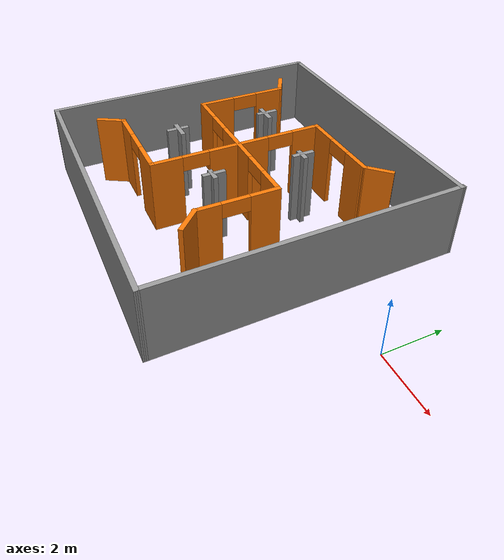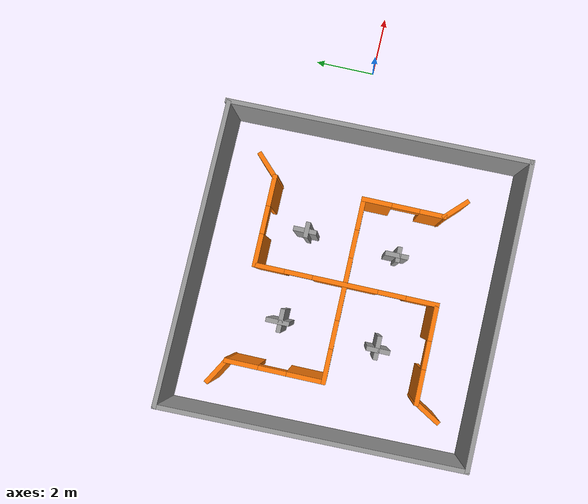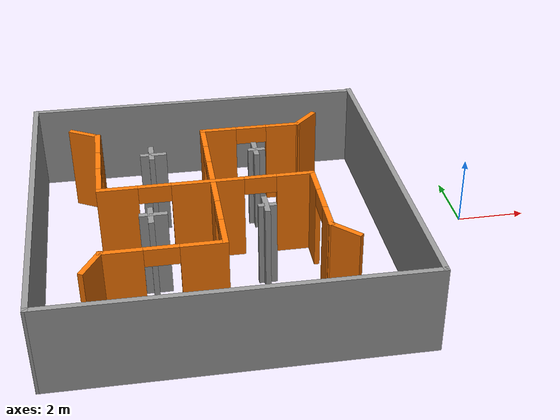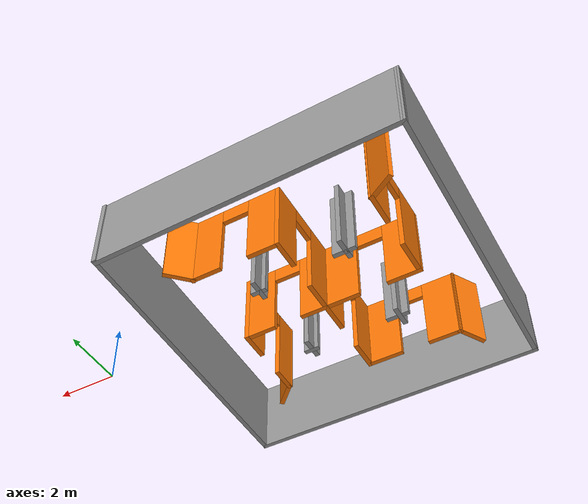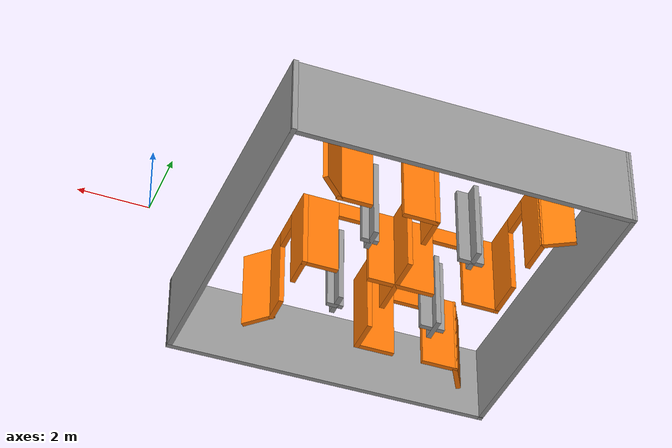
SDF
<?xml version='1.0'?>
<sdf version='1.6'>
  <model name='building'>
    <pose frame=''>-7.39701 -0.649849 0 0 -0 0</pose>
    <link name='Wall_21'>
      <collision name='Wall_21_Collision'>
        <geometry>
          <box>
            <size>10 0.15 2.5</size>
          </box>
        </geometry>
        <pose frame=''>0 0 1.25 0 -0 0</pose>
      </collision>
      <visual name='Wall_21_Visual'>
        <pose frame=''>0 0 1.25 0 -0 0</pose>
        <geometry>
          <box>
            <size>10 0.15 2.5</size>
          </box>
        </geometry>
        <material>
          <script>
            <uri>file://media/materials/scripts/gazebo.material</uri>
            <name>Gazebo/Grey</name>
          </script>
          <ambient>1 1 1 1</ambient>
        </material>
        <meta>
          <layer>0</layer>
        </meta>
      </visual>
      <pose frame=''>-4.92709 0.035342 0 0 -0 1.58535</pose>
    </link>
    <link name='Wall_22'>
      <collision name='Wall_22_Collision'>
        <geometry>
          <box>
            <size>10.0029 0.15 2.5</size>
          </box>
        </geometry>
        <pose frame=''>0 0 1.25 0 -0 0</pose>
      </collision>
      <visual name='Wall_22_Visual'>
        <pose frame=''>0 0 1.25 0 -0 0</pose>
        <geometry>
          <box>
            <size>10.0029 0.15 2.5</size>
          </box>
        </geometry>
        <material>
          <script>
            <uri>file://media/materials/scripts/gazebo.material</uri>
            <name>Gazebo/Grey</name>
          </script>
          <ambient>1 1 1 1</ambient>
        </material>
        <meta>
          <layer>0</layer>
        </meta>
      </visual>
      <pose frame=''>-0.072667 4.92419 0 0 0 -0.007232</pose>
    </link>
    <link name='Wall_23'>
      <collision name='Wall_23_Collision'>
        <geometry>
          <box>
            <size>10 0.15 2.5</size>
          </box>
        </geometry>
        <pose frame=''>0 0 1.25 0 -0 0</pose>
      </collision>
      <visual name='Wall_23_Visual'>
        <pose frame=''>0 0 1.25 0 -0 0</pose>
        <geometry>
          <box>
            <size>10 0.15 2.5</size>
          </box>
        </geometry>
        <material>
          <script>
            <uri>file://media/materials/scripts/gazebo.material</uri>
            <name>Gazebo/Grey</name>
          </script>
          <ambient>1 1 1 1</ambient>
        </material>
        <meta>
          <layer>0</layer>
        </meta>
      </visual>
      <pose frame=''>4.92607 0.01089 0 0 0 -1.55604</pose>
    </link>
    <link name='Wall_24'>
      <collision name='Wall_24_Collision'>
        <geometry>
          <box>
            <size>10.0049 0.15 2.5</size>
          </box>
        </geometry>
        <pose frame=''>0 0 1.25 0 -0 0</pose>
      </collision>
      <visual name='Wall_24_Visual'>
        <pose frame=''>0 0 1.25 0 -0 0</pose>
        <geometry>
          <box>
            <size>10.0049 0.15 2.5</size>
          </box>
        </geometry>
        <material>
          <script>
            <uri>file://media/materials/scripts/gazebo.material</uri>
            <name>Gazebo/Grey</name>
          </script>
          <ambient>1 1 1 1</ambient>
        </material>
        <meta>
          <layer>0</layer>
        </meta>
      </visual>
      <pose frame=''>0.071649 -4.92475 0 0 -0 3.13436</pose>
    </link>
    <link name='Wall_26'>
      <pose frame=''>-0.227982 0.009757 0 0 -0 0</pose>
      <visual name='Wall_26_Visual_0'>
        <pose frame=''>-2.43889 0 1.25 0 -0 0</pose>
        <geometry>
          <box>
            <size>1.12222 0.15 2.5</size>
          </box>
        </geometry>
        <material>
          <script>
            <uri>file://media/materials/scripts/gazebo.material</uri>
            <name>Gazebo/Grey</name>
          </script>
          <ambient>0.996078 0.47451 0.0196078 1</ambient>
        </material>
        <meta>
          <layer>0</layer>
        </meta>
      </visual>
      <collision name='Wall_26_Collision_0'>
        <geometry>
          <box>
            <size>1.12222 0.15 2.5</size>
          </box>
        </geometry>
        <pose frame=''>-2.43889 0 1.25 0 -0 0</pose>
      </collision>
      <visual name='Wall_26_Visual_1'>
        <pose frame=''>0.022651 0 1.25 0 -0 0</pose>
        <geometry>
          <box>
            <size>2.00086 0.15 2.5</size>
          </box>
        </geometry>
        <material>
          <script>
            <uri>file://media/materials/scripts/gazebo.material</uri>
            <name>Gazebo/Grey</name>
          </script>
          <ambient>0.996078 0.47451 0.0196078 1</ambient>
        </material>
        <meta>
          <layer>0</layer>
        </meta>
      </visual>
      <collision name='Wall_26_Collision_1'>
        <geometry>
          <box>
            <size>2.00086 0.15 2.5</size>
          </box>
        </geometry>
        <pose frame=''>0.022651 0 1.25 0 -0 0</pose>
      </collision>
      <visual name='Wall_26_Visual_2'>
        <pose frame=''>2.46154 0 1.25 0 -0 0</pose>
        <geometry>
          <box>
            <size>1.07692 0.15 2.5</size>
          </box>
        </geometry>
        <material>
          <script>
            <uri>file://media/materials/scripts/gazebo.material</uri>
            <name>Gazebo/Grey</name>
          </script>
          <ambient>0.996078 0.47451 0.0196078 1</ambient>
        </material>
        <meta>
          <layer>0</layer>
        </meta>
      </visual>
      <collision name='Wall_26_Collision_2'>
        <geometry>
          <box>
            <size>1.07692 0.15 2.5</size>
          </box>
        </geometry>
        <pose frame=''>2.46154 0 1.25 0 -0 0</pose>
      </collision>
      <visual name='Wall_26_Visual_3'>
        <pose frame=''>-1.42778 0 2.25 0 -0 0</pose>
        <geometry>
          <box>
            <size>0.9 0.15 0.5</size>
          </box>
        </geometry>
        <material>
          <script>
            <uri>file://media/materials/scripts/gazebo.material</uri>
            <name>Gazebo/Grey</name>
          </script>
          <ambient>0.996078 0.47451 0.0196078 1</ambient>
        </material>
        <meta>
          <layer>0</layer>
        </meta>
      </visual>
      <collision name='Wall_26_Collision_3'>
        <geometry>
          <box>
            <size>0.9 0.15 0.5</size>
          </box>
        </geometry>
        <pose frame=''>-1.42778 0 2.25 0 -0 0</pose>
      </collision>
      <visual name='Wall_26_Visual_4'>
        <pose frame=''>1.47308 0 2.25 0 -0 0</pose>
        <geometry>
          <box>
            <size>0.9 0.15 0.5</size>
          </box>
        </geometry>
        <material>
          <script>
            <uri>file://media/materials/scripts/gazebo.material</uri>
            <name>Gazebo/Grey</name>
          </script>
          <ambient>0.996078 0.47451 0.0196078 1</ambient>
        </material>
        <meta>
          <layer>0</layer>
        </meta>
      </visual>
      <collision name='Wall_26_Collision_4'>
        <geometry>
          <box>
            <size>0.9 0.15 0.5</size>
          </box>
        </geometry>
        <pose frame=''>1.47308 0 2.25 0 -0 0</pose>
      </collision>
    </link>
    <link name='Wall_28'>
      <pose frame=''>-0.064968 -0.012893 0 0 -0 1.5708</pose>
      <visual name='Wall_28_Visual_0'>
        <pose frame=''>-2.46228 0 1.25 0 -0 0</pose>
        <geometry>
          <box>
            <size>1.07543 0.15 2.5</size>
          </box>
        </geometry>
        <material>
          <script>
            <uri>file://media/materials/scripts/gazebo.material</uri>
            <name>Gazebo/Grey</name>
          </script>
          <ambient>0.996078 0.47451 0.0196078 1</ambient>
        </material>
        <meta>
          <layer>0</layer>
        </meta>
      </visual>
      <collision name='Wall_28_Collision_0'>
        <geometry>
          <box>
            <size>1.07543 0.15 2.5</size>
          </box>
        </geometry>
        <pose frame=''>-2.46228 0 1.25 0 -0 0</pose>
      </collision>
      <visual name='Wall_28_Visual_1'>
        <pose frame=''>0.022651 0 1.25 0 -0 0</pose>
        <geometry>
          <box>
            <size>2.09444 0.15 2.5</size>
          </box>
        </geometry>
        <material>
          <script>
            <uri>file://media/materials/scripts/gazebo.material</uri>
            <name>Gazebo/Grey</name>
          </script>
          <ambient>0.996078 0.47451 0.0196078 1</ambient>
        </material>
        <meta>
          <layer>0</layer>
        </meta>
      </visual>
      <collision name='Wall_28_Collision_1'>
        <geometry>
          <box>
            <size>2.09444 0.15 2.5</size>
          </box>
        </geometry>
        <pose frame=''>0.022651 0 1.25 0 -0 0</pose>
      </collision>
      <visual name='Wall_28_Visual_2'>
        <pose frame=''>2.48494 0 1.25 0 -0 0</pose>
        <geometry>
          <box>
            <size>1.03013 0.15 2.5</size>
          </box>
        </geometry>
        <material>
          <script>
            <uri>file://media/materials/scripts/gazebo.material</uri>
            <name>Gazebo/Grey</name>
          </script>
          <ambient>0.996078 0.47451 0.0196078 1</ambient>
        </material>
        <meta>
          <layer>0</layer>
        </meta>
      </visual>
      <collision name='Wall_28_Collision_2'>
        <geometry>
          <box>
            <size>1.03013 0.15 2.5</size>
          </box>
        </geometry>
        <pose frame=''>2.48494 0 1.25 0 -0 0</pose>
      </collision>
      <visual name='Wall_28_Visual_3'>
        <pose frame=''>-1.47457 0 2.25 0 -0 0</pose>
        <geometry>
          <box>
            <size>0.9 0.15 0.5</size>
          </box>
        </geometry>
        <material>
          <script>
            <uri>file://media/materials/scripts/gazebo.material</uri>
            <name>Gazebo/Grey</name>
          </script>
          <ambient>0.996078 0.47451 0.0196078 1</ambient>
        </material>
        <meta>
          <layer>0</layer>
        </meta>
      </visual>
      <collision name='Wall_28_Collision_3'>
        <geometry>
          <box>
            <size>0.9 0.15 0.5</size>
          </box>
        </geometry>
        <pose frame=''>-1.47457 0 2.25 0 -0 0</pose>
      </collision>
      <visual name='Wall_28_Visual_4'>
        <pose frame=''>1.51987 0 2.25 0 -0 0</pose>
        <geometry>
          <box>
            <size>0.9 0.15 0.5</size>
          </box>
        </geometry>
        <material>
          <script>
            <uri>file://media/materials/scripts/gazebo.material</uri>
            <name>Gazebo/Grey</name>
          </script>
          <ambient>0.996078 0.47451 0.0196078 1</ambient>
        </material>
        <meta>
          <layer>0</layer>
        </meta>
      </visual>
      <collision name='Wall_28_Collision_4'>
        <geometry>
          <box>
            <size>0.9 0.15 0.5</size>
          </box>
        </geometry>
        <pose frame=''>1.51987 0 2.25 0 -0 0</pose>
      </collision>
    </link>
    <link name='Wall_29'>
      <pose frame=''>1.36003 2.91211 0 0 -0 0</pose>
      <visual name='Wall_29_Visual_0'>
        <pose frame=''>-0.962284 0 1.25 0 -0 0</pose>
        <geometry>
          <box>
            <size>1.07543 0.15 2.5</size>
          </box>
        </geometry>
        <material>
          <script>
            <uri>file://media/materials/scripts/gazebo.material</uri>
            <name>Gazebo/Grey</name>
          </script>
          <ambient>0.996078 0.47451 0.0196078 1</ambient>
        </material>
        <meta>
          <layer>0</layer>
        </meta>
      </visual>
      <collision name='Wall_29_Collision_0'>
        <geometry>
          <box>
            <size>1.07543 0.15 2.5</size>
          </box>
        </geometry>
        <pose frame=''>-0.962284 0 1.25 0 -0 0</pose>
      </collision>
      <visual name='Wall_29_Visual_1'>
        <pose frame=''>0.987716 0 1.25 0 -0 0</pose>
        <geometry>
          <box>
            <size>1.02457 0.15 2.5</size>
          </box>
        </geometry>
        <material>
          <script>
            <uri>file://media/materials/scripts/gazebo.material</uri>
            <name>Gazebo/Grey</name>
          </script>
          <ambient>0.996078 0.47451 0.0196078 1</ambient>
        </material>
        <meta>
          <layer>0</layer>
        </meta>
      </visual>
      <collision name='Wall_29_Collision_1'>
        <geometry>
          <box>
            <size>1.02457 0.15 2.5</size>
          </box>
        </geometry>
        <pose frame=''>0.987716 0 1.25 0 -0 0</pose>
      </collision>
      <visual name='Wall_29_Visual_2'>
        <pose frame=''>0.025431 0 2.25 0 -0 0</pose>
        <geometry>
          <box>
            <size>0.9 0.15 0.5</size>
          </box>
        </geometry>
        <material>
          <script>
            <uri>file://media/materials/scripts/gazebo.material</uri>
            <name>Gazebo/Grey</name>
          </script>
          <ambient>0.996078 0.47451 0.0196078 1</ambient>
        </material>
        <meta>
          <layer>0</layer>
        </meta>
      </visual>
      <collision name='Wall_29_Collision_2'>
        <geometry>
          <box>
            <size>0.9 0.15 0.5</size>
          </box>
        </geometry>
        <pose frame=''>0.025431 0 2.25 0 -0 0</pose>
      </collision>
    </link>
    <link name='Wall_30'>
      <collision name='Wall_30_Collision'>
        <geometry>
          <box>
            <size>1 0.15 2.5</size>
          </box>
        </geometry>
        <pose frame=''>0 0 1.25 0 -0 0</pose>
      </collision>
      <visual name='Wall_30_Visual'>
        <pose frame=''>0 0 1.25 0 -0 0</pose>
        <geometry>
          <box>
            <size>1 0.15 2.5</size>
          </box>
        </geometry>
        <material>
          <script>
            <uri>file://media/materials/scripts/gazebo.material</uri>
            <name>Gazebo/Grey</name>
          </script>
          <ambient>0.996078 0.47451 0.0196078 1</ambient>
        </material>
        <meta>
          <layer>0</layer>
        </meta>
      </visual>
      <pose frame=''>3.08555 3.21263 0 0 -0 0.785398</pose>
    </link>
    <link name='Wall_32'>
      <pose frame=''>2.69702 -1.29024 0 0 0 -1.5708</pose>
      <visual name='Wall_32_Visual_0'>
        <pose frame=''>-0.884072 0 1.25 0 -0 0</pose>
        <geometry>
          <box>
            <size>0.981855 0.15 2.5</size>
          </box>
        </geometry>
        <material>
          <script>
            <uri>file://media/materials/scripts/gazebo.material</uri>
            <name>Gazebo/Grey</name>
          </script>
          <ambient>0.996078 0.47451 0.0196078 1</ambient>
        </material>
        <meta>
          <layer>0</layer>
        </meta>
      </visual>
      <collision name='Wall_32_Collision_0'>
        <geometry>
          <box>
            <size>0.981855 0.15 2.5</size>
          </box>
        </geometry>
        <pose frame=''>-0.884072 0 1.25 0 -0 0</pose>
      </collision>
      <visual name='Wall_32_Visual_1'>
        <pose frame=''>0.940928 0 1.25 0 -0 0</pose>
        <geometry>
          <box>
            <size>0.868145 0.15 2.5</size>
          </box>
        </geometry>
        <material>
          <script>
            <uri>file://media/materials/scripts/gazebo.material</uri>
            <name>Gazebo/Grey</name>
          </script>
          <ambient>0.996078 0.47451 0.0196078 1</ambient>
        </material>
        <meta>
          <layer>0</layer>
        </meta>
      </visual>
      <collision name='Wall_32_Collision_1'>
        <geometry>
          <box>
            <size>0.868145 0.15 2.5</size>
          </box>
        </geometry>
        <pose frame=''>0.940928 0 1.25 0 -0 0</pose>
      </collision>
      <visual name='Wall_32_Visual_2'>
        <pose frame=''>0.056855 0 2.25 0 -0 0</pose>
        <geometry>
          <box>
            <size>0.9 0.15 0.5</size>
          </box>
        </geometry>
        <material>
          <script>
            <uri>file://media/materials/scripts/gazebo.material</uri>
            <name>Gazebo/Grey</name>
          </script>
          <ambient>0.996078 0.47451 0.0196078 1</ambient>
        </material>
        <meta>
          <layer>0</layer>
        </meta>
      </visual>
      <collision name='Wall_32_Collision_2'>
        <geometry>
          <box>
            <size>0.9 0.15 0.5</size>
          </box>
        </geometry>
        <pose frame=''>0.056855 0 2.25 0 -0 0</pose>
      </collision>
    </link>
    <link name='Wall_33'>
      <collision name='Wall_33_Collision'>
        <geometry>
          <box>
            <size>1 0.15 2.5</size>
          </box>
        </geometry>
        <pose frame=''>0 0 1.25 0 -0 0</pose>
      </collision>
      <visual name='Wall_33_Visual'>
        <pose frame=''>0 0 1.25 0 -0 0</pose>
        <geometry>
          <box>
            <size>1 0.15 2.5</size>
          </box>
        </geometry>
        <material>
          <script>
            <uri>file://media/materials/scripts/gazebo.material</uri>
            <name>Gazebo/Grey</name>
          </script>
          <ambient>0.996078 0.47451 0.0196078 1</ambient>
        </material>
        <meta>
          <layer>0</layer>
        </meta>
      </visual>
      <pose frame=''>2.99754 -2.89076 0 0 0 -0.785398</pose>
    </link>
    <link name='Wall_35'>
      <pose frame=''>-1.61497 -2.93789 0 0 -0 3.14159</pose>
      <visual name='Wall_35_Visual_0'>
        <pose frame=''>-1.0171 0 1.25 0 -0 0</pose>
        <geometry>
          <box>
            <size>1.21579 0.15 2.5</size>
          </box>
        </geometry>
        <material>
          <script>
            <uri>file://media/materials/scripts/gazebo.material</uri>
            <name>Gazebo/Grey</name>
          </script>
          <ambient>0.996078 0.47451 0.0196078 1</ambient>
        </material>
        <meta>
          <layer>0</layer>
        </meta>
      </visual>
      <collision name='Wall_35_Collision_0'>
        <geometry>
          <box>
            <size>1.21579 0.15 2.5</size>
          </box>
        </geometry>
        <pose frame=''>-1.0171 0 1.25 0 -0 0</pose>
      </collision>
      <visual name='Wall_35_Visual_1'>
        <pose frame=''>1.0579 0 1.25 0 -0 0</pose>
        <geometry>
          <box>
            <size>1.1342 0.15 2.5</size>
          </box>
        </geometry>
        <material>
          <script>
            <uri>file://media/materials/scripts/gazebo.material</uri>
            <name>Gazebo/Grey</name>
          </script>
          <ambient>0.996078 0.47451 0.0196078 1</ambient>
        </material>
        <meta>
          <layer>0</layer>
        </meta>
      </visual>
      <collision name='Wall_35_Collision_1'>
        <geometry>
          <box>
            <size>1.1342 0.15 2.5</size>
          </box>
        </geometry>
        <pose frame=''>1.0579 0 1.25 0 -0 0</pose>
      </collision>
      <visual name='Wall_35_Visual_2'>
        <pose frame=''>0.040795 0 2.25 0 -0 0</pose>
        <geometry>
          <box>
            <size>0.9 0.15 0.5</size>
          </box>
        </geometry>
        <material>
          <script>
            <uri>file://media/materials/scripts/gazebo.material</uri>
            <name>Gazebo/Grey</name>
          </script>
          <ambient>0.996078 0.47451 0.0196078 1</ambient>
        </material>
        <meta>
          <layer>0</layer>
        </meta>
      </visual>
      <collision name='Wall_35_Collision_2'>
        <geometry>
          <box>
            <size>0.9 0.15 0.5</size>
          </box>
        </geometry>
        <pose frame=''>0.040795 0 2.25 0 -0 0</pose>
      </collision>
    </link>
    <link name='Wall_36'>
      <collision name='Wall_36_Collision'>
        <geometry>
          <box>
            <size>1 0.15 2.5</size>
          </box>
        </geometry>
        <pose frame=''>0 0 1.25 0 -0 0</pose>
      </collision>
      <visual name='Wall_36_Visual'>
        <pose frame=''>0 0 1.25 0 -0 0</pose>
        <geometry>
          <box>
            <size>1 0.15 2.5</size>
          </box>
        </geometry>
        <material>
          <script>
            <uri>file://media/materials/scripts/gazebo.material</uri>
            <name>Gazebo/Grey</name>
          </script>
          <ambient>0.996078 0.47451 0.0196078 1</ambient>
        </material>
        <meta>
          <layer>0</layer>
        </meta>
      </visual>
      <pose frame=''>-3.37747 -3.30595 0 0 0 -2.0944</pose>
    </link>
    <link name='Wall_38'>
      <pose frame=''>-3.15298 1.55976 0 0 -0 1.5708</pose>
      <visual name='Wall_38_Visual_0'>
        <pose frame=''>-0.993708 0 1.25 0 -0 0</pose>
        <geometry>
          <box>
            <size>1.26258 0.15 2.5</size>
          </box>
        </geometry>
        <material>
          <script>
            <uri>file://media/materials/scripts/gazebo.material</uri>
            <name>Gazebo/Grey</name>
          </script>
          <ambient>0.996078 0.47451 0.0196078 1</ambient>
        </material>
        <meta>
          <layer>0</layer>
        </meta>
      </visual>
      <collision name='Wall_38_Collision_0'>
        <geometry>
          <box>
            <size>1.26258 0.15 2.5</size>
          </box>
        </geometry>
        <pose frame=''>-0.993708 0 1.25 0 -0 0</pose>
      </collision>
      <visual name='Wall_38_Visual_1'>
        <pose frame=''>1.08129 0 1.25 0 -0 0</pose>
        <geometry>
          <box>
            <size>1.08742 0.15 2.5</size>
          </box>
        </geometry>
        <material>
          <script>
            <uri>file://media/materials/scripts/gazebo.material</uri>
            <name>Gazebo/Grey</name>
          </script>
          <ambient>0.996078 0.47451 0.0196078 1</ambient>
        </material>
        <meta>
          <layer>0</layer>
        </meta>
      </visual>
      <collision name='Wall_38_Collision_1'>
        <geometry>
          <box>
            <size>1.08742 0.15 2.5</size>
          </box>
        </geometry>
        <pose frame=''>1.08129 0 1.25 0 -0 0</pose>
      </collision>
      <visual name='Wall_38_Visual_2'>
        <pose frame=''>0.087584 0 2.25 0 -0 0</pose>
        <geometry>
          <box>
            <size>0.9 0.15 0.5</size>
          </box>
        </geometry>
        <material>
          <script>
            <uri>file://media/materials/scripts/gazebo.material</uri>
            <name>Gazebo/Grey</name>
          </script>
          <ambient>0.996078 0.47451 0.0196078 1</ambient>
        </material>
        <meta>
          <layer>0</layer>
        </meta>
      </visual>
      <collision name='Wall_38_Collision_2'>
        <geometry>
          <box>
            <size>0.9 0.15 0.5</size>
          </box>
        </geometry>
        <pose frame=''>0.087584 0 2.25 0 -0 0</pose>
      </collision>
    </link>
    <link name='Wall_39'>
      <collision name='Wall_39_Collision'>
        <geometry>
          <box>
            <size>1 0.15 2.5</size>
          </box>
        </geometry>
        <pose frame=''>0 0 1.25 0 -0 0</pose>
      </collision>
      <visual name='Wall_39_Visual'>
        <pose frame=''>0 0 1.25 0 -0 0</pose>
        <geometry>
          <box>
            <size>1 0.15 2.5</size>
          </box>
        </geometry>
        <material>
          <script>
            <uri>file://media/materials/scripts/gazebo.material</uri>
            <name>Gazebo/Grey</name>
          </script>
          <ambient>0.996078 0.47451 0.0196078 1</ambient>
        </material>
        <meta>
          <layer>0</layer>
        </meta>
      </visual>
      <pose frame=''>-3.52104 3.32226 0 0 -0 2.61799</pose>
    </link>
    <link name='Wall_44'>
      <collision name='Wall_44_Collision'>
        <geometry>
          <box>
            <size>0.75 0.15 2.5</size>
          </box>
        </geometry>
        <pose frame=''>0 0 1.25 0 -0 0</pose>
      </collision>
      <visual name='Wall_44_Visual'>
        <pose frame=''>0 0 1.25 0 -0 0</pose>
        <geometry>
          <box>
            <size>0.75 0.15 2.5</size>
          </box>
        </geometry>
        <material>
          <script>
            <uri>file://media/materials/scripts/gazebo.material</uri>
            <name>Gazebo/Grey</name>
          </script>
          <ambient>0 0 0 1</ambient>
        </material>
        <meta>
          <layer>0</layer>
        </meta>
      </visual>
      <pose frame=''>-1.76878 -1.40124 0 0 -0 0</pose>
    </link>
    <link name='Wall_46'>
      <collision name='Wall_46_Collision'>
        <geometry>
          <box>
            <size>0.75 0.15 2.5</size>
          </box>
        </geometry>
        <pose frame=''>0 0 1.25 0 -0 0</pose>
      </collision>
      <visual name='Wall_46_Visual'>
        <pose frame=''>0 0 1.25 0 -0 0</pose>
        <geometry>
          <box>
            <size>0.75 0.15 2.5</size>
          </box>
        </geometry>
        <material>
          <script>
            <uri>file://media/materials/scripts/gazebo.material</uri>
            <name>Gazebo/Grey</name>
          </script>
          <ambient>0 0 0 1</ambient>
        </material>
        <meta>
          <layer>0</layer>
        </meta>
      </visual>
      <pose frame=''>-1.83882 -1.43734 0 0 -0 1.5708</pose>
    </link>
    <link name='Wall_48'>
      <collision name='Wall_48_Collision'>
        <geometry>
          <box>
            <size>0.75 0.15 2.5</size>
          </box>
        </geometry>
        <pose frame=''>0 0 1.25 0 -0 0</pose>
      </collision>
      <visual name='Wall_48_Visual'>
        <pose frame=''>0 0 1.25 0 -0 0</pose>
        <geometry>
          <box>
            <size>0.75 0.15 2.5</size>
          </box>
        </geometry>
        <material>
          <script>
            <uri>file://media/materials/scripts/gazebo.material</uri>
            <name>Gazebo/Grey</name>
          </script>
          <ambient>0 0 0 1</ambient>
        </material>
        <meta>
          <layer>0</layer>
        </meta>
      </visual>
      <pose frame=''>-1.59189 1.72976 0 0 -0 0</pose>
    </link>
    <link name='Wall_50'>
      <collision name='Wall_50_Collision'>
        <geometry>
          <box>
            <size>0.75 0.15 2.5</size>
          </box>
        </geometry>
        <pose frame=''>0 0 1.25 0 -0 0</pose>
      </collision>
      <visual name='Wall_50_Visual'>
        <pose frame=''>0 0 1.25 0 -0 0</pose>
        <geometry>
          <box>
            <size>0.75 0.15 2.5</size>
          </box>
        </geometry>
        <material>
          <script>
            <uri>file://media/materials/scripts/gazebo.material</uri>
            <name>Gazebo/Grey</name>
          </script>
          <ambient>0 0 0 1</ambient>
        </material>
        <meta>
          <layer>0</layer>
        </meta>
      </visual>
      <pose frame=''>-1.64424 1.81892 0 0 0 -1.5708</pose>
    </link>
    <link name='Wall_52'>
      <collision name='Wall_52_Collision'>
        <geometry>
          <box>
            <size>0.5 0.15 2.5</size>
          </box>
        </geometry>
        <pose frame=''>0 0 1.25 0 -0 0</pose>
      </collision>
      <visual name='Wall_52_Visual'>
        <pose frame=''>0 0 1.25 0 -0 0</pose>
        <geometry>
          <box>
            <size>0.5 0.15 2.5</size>
          </box>
        </geometry>
        <material>
          <script>
            <uri>file://media/materials/scripts/gazebo.material</uri>
            <name>Gazebo/Grey</name>
          </script>
          <ambient>0 0 0 1</ambient>
        </material>
        <meta>
          <layer>0</layer>
        </meta>
      </visual>
      <pose frame=''>1.36104 1.55286 0 0 -0 0</pose>
    </link>
    <link name='Wall_54'>
      <collision name='Wall_54_Collision'>
        <geometry>
          <box>
            <size>0.75 0.15 2.5</size>
          </box>
        </geometry>
        <pose frame=''>0 0 1.25 0 -0 0</pose>
      </collision>
      <visual name='Wall_54_Visual'>
        <pose frame=''>0 0 1.25 0 -0 0</pose>
        <geometry>
          <box>
            <size>0.75 0.15 2.5</size>
          </box>
        </geometry>
        <material>
          <script>
            <uri>file://media/materials/scripts/gazebo.material</uri>
            <name>Gazebo/Grey</name>
          </script>
          <ambient>0 0 0 1</ambient>
        </material>
        <meta>
          <layer>0</layer>
        </meta>
      </visual>
      <pose frame=''>1.32756 1.60665 0 0 0 -1.5708</pose>
    </link>
    <link name='Wall_56'>
      <collision name='Wall_56_Collision'>
        <geometry>
          <box>
            <size>0.5 0.15 2.5</size>
          </box>
        </geometry>
        <pose frame=''>0 0 1.25 0 -0 0</pose>
      </collision>
      <visual name='Wall_56_Visual'>
        <pose frame=''>0 0 1.25 0 -0 0</pose>
        <geometry>
          <box>
            <size>0.5 0.15 2.5</size>
          </box>
        </geometry>
        <material>
          <script>
            <uri>file://media/materials/scripts/gazebo.material</uri>
            <name>Gazebo/Grey</name>
          </script>
          <ambient>0 0 0 1</ambient>
        </material>
        <meta>
          <layer>0</layer>
        </meta>
      </visual>
      <pose frame=''>1.21953 -1.43662 0 0 -0 0</pose>
    </link>
    <link name='Wall_58'>
      <collision name='Wall_58_Collision'>
        <geometry>
          <box>
            <size>0.75 0.15 2.5</size>
          </box>
        </geometry>
        <pose frame=''>0 0 1.25 0 -0 0</pose>
      </collision>
      <visual name='Wall_58_Visual'>
        <pose frame=''>0 0 1.25 0 -0 0</pose>
        <geometry>
          <box>
            <size>0.75 0.15 2.5</size>
          </box>
        </geometry>
        <material>
          <script>
            <uri>file://media/materials/scripts/gazebo.material</uri>
            <name>Gazebo/Grey</name>
          </script>
          <ambient>0 0 0 1</ambient>
        </material>
        <meta>
          <layer>0</layer>
        </meta>
      </visual>
      <pose frame=''>1.18604 -1.38284 0 0 0 -1.5708</pose>
    </link>
    <static>1</static>
  </model>
</sdf>
